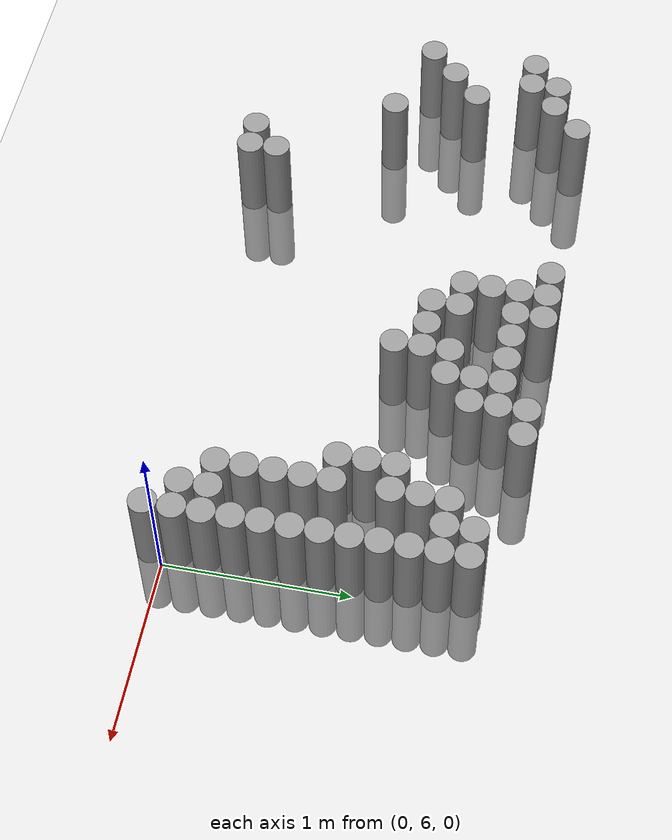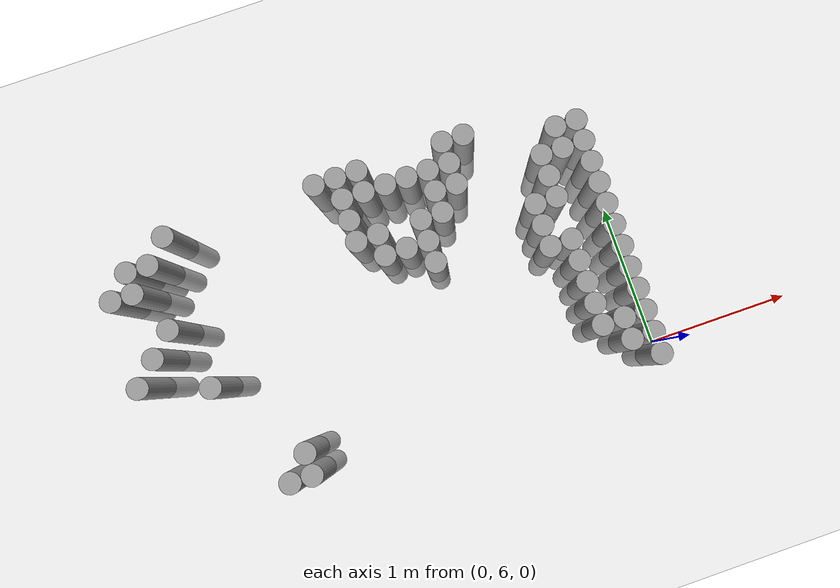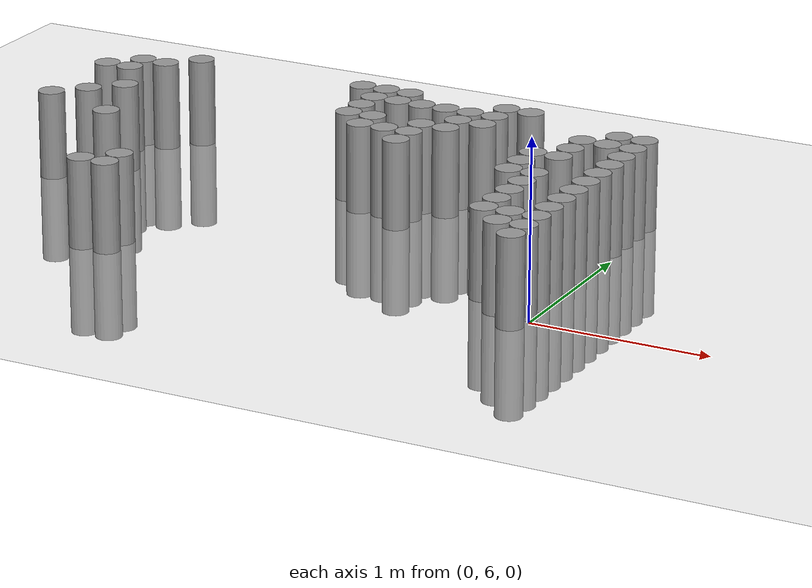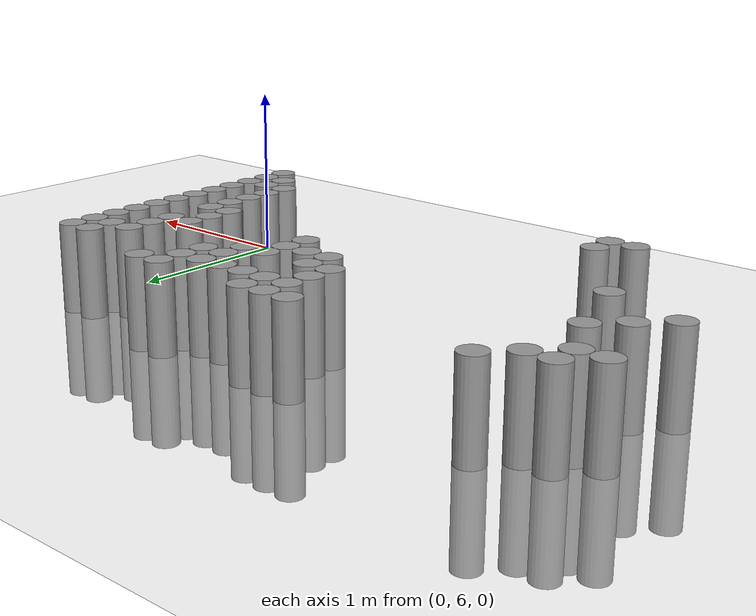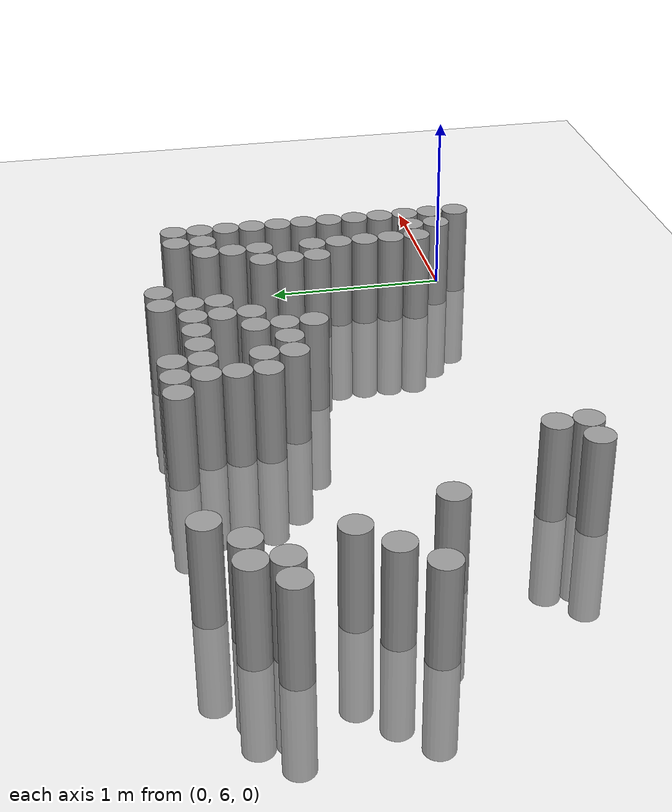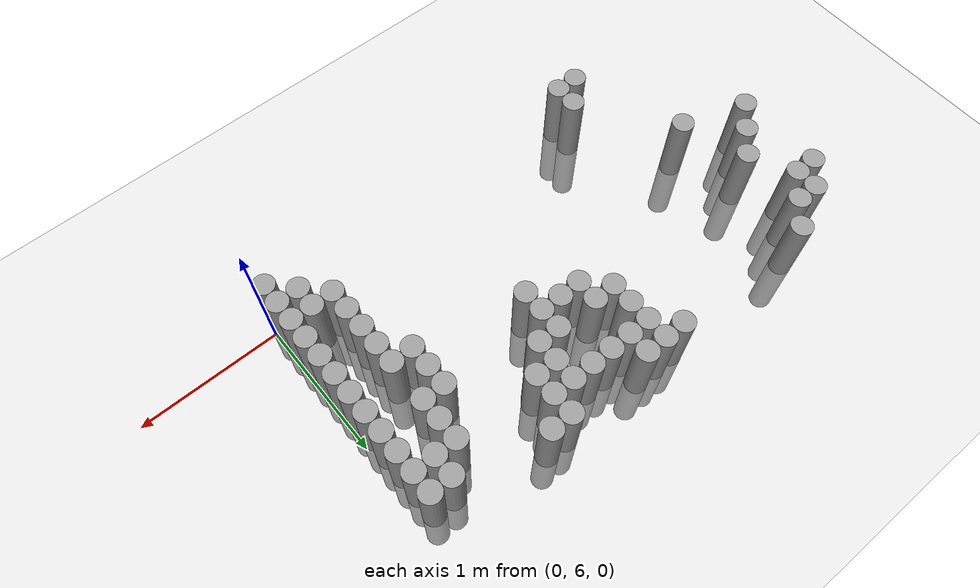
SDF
<sdf version="1.6">
 <world name="default">
  <model name="ground_plane">
   <static>1</static>
   <link name="link">
    <collision name="collision">
     <geometry><plane><normal>0 0 1</normal><size>100 100</size></plane></geometry>
     <surface><friction><ode><mu>100</mu><mu2>50</mu2></ode></friction></surface>
    </collision>
    <visual name="visual">
     <cast_shadows>0</cast_shadows>
     <geometry><plane><normal>0 0 1</normal><size>100 100</size></plane></geometry>
     <material>
      <script><uri>file://media/materials/scripts/gazebo.material</uri><name>Gazebo/Grey</name></script>
     </material>
    </visual>
   </link>
  </model>
  <model name="unit_cylinder_171">
   <pose>-3.375000 6.825000 0.000000 0.000000 0.000000 0.000000</pose>
   <link name="link">
    <inertial>
     <mass>1</mass>
     <inertia><ixx>0.145833</ixx><ixy>0</ixy><ixz>0</ixz><iyy>0.145833</iyy><iyz>0</iyz><izz>0.125</izz></inertia>
    </inertial>
    <collision name="collision">
     <geometry><cylinder><radius>0.075000</radius><length>1</length></cylinder></geometry>
    </collision>
    <visual name="visual">
     <geometry><cylinder><radius>0.075000</radius><length>1</length></cylinder></geometry>
     <material>
      <script><name>Gazebo/Grey</name><uri>file://media/materials/scripts/gazebo.material</uri></script>
     </material>
    </visual>
   </link>
  </model>
  <model name="unit_cylinder_172">
   <pose>-3.375000 7.425000 0.000000 0.000000 0.000000 0.000000</pose>
   <link name="link">
    <inertial>
     <mass>1</mass>
     <inertia><ixx>0.145833</ixx><ixy>0</ixy><ixz>0</ixz><iyy>0.145833</iyy><iyz>0</iyz><izz>0.125</izz></inertia>
    </inertial>
    <collision name="collision">
     <geometry><cylinder><radius>0.075000</radius><length>1</length></cylinder></geometry>
    </collision>
    <visual name="visual">
     <geometry><cylinder><radius>0.075000</radius><length>1</length></cylinder></geometry>
     <material>
      <script><name>Gazebo/Grey</name><uri>file://media/materials/scripts/gazebo.material</uri></script>
     </material>
    </visual>
   </link>
  </model>
  <model name="unit_cylinder_174">
   <pose>-3.225000 6.975000 0.000000 0.000000 0.000000 0.000000</pose>
   <link name="link">
    <inertial>
     <mass>1</mass>
     <inertia><ixx>0.145833</ixx><ixy>0</ixy><ixz>0</ixz><iyy>0.145833</iyy><iyz>0</iyz><izz>0.125</izz></inertia>
    </inertial>
    <collision name="collision">
     <geometry><cylinder><radius>0.075000</radius><length>1</length></cylinder></geometry>
    </collision>
    <visual name="visual">
     <geometry><cylinder><radius>0.075000</radius><length>1</length></cylinder></geometry>
     <material>
      <script><name>Gazebo/Grey</name><uri>file://media/materials/scripts/gazebo.material</uri></script>
     </material>
    </visual>
   </link>
  </model>
  <model name="unit_cylinder_175">
   <pose>-3.225000 7.425000 0.000000 0.000000 0.000000 0.000000</pose>
   <link name="link">
    <inertial>
     <mass>1</mass>
     <inertia><ixx>0.145833</ixx><ixy>0</ixy><ixz>0</ixz><iyy>0.145833</iyy><iyz>0</iyz><izz>0.125</izz></inertia>
    </inertial>
    <collision name="collision">
     <geometry><cylinder><radius>0.075000</radius><length>1</length></cylinder></geometry>
    </collision>
    <visual name="visual">
     <geometry><cylinder><radius>0.075000</radius><length>1</length></cylinder></geometry>
     <material>
      <script><name>Gazebo/Grey</name><uri>file://media/materials/scripts/gazebo.material</uri></script>
     </material>
    </visual>
   </link>
  </model>
  <model name="unit_cylinder_176">
   <pose>-3.225000 7.575000 0.000000 0.000000 0.000000 0.000000</pose>
   <link name="link">
    <inertial>
     <mass>1</mass>
     <inertia><ixx>0.145833</ixx><ixy>0</ixy><ixz>0</ixz><iyy>0.145833</iyy><iyz>0</iyz><izz>0.125</izz></inertia>
    </inertial>
    <collision name="collision">
     <geometry><cylinder><radius>0.075000</radius><length>1</length></cylinder></geometry>
    </collision>
    <visual name="visual">
     <geometry><cylinder><radius>0.075000</radius><length>1</length></cylinder></geometry>
     <material>
      <script><name>Gazebo/Grey</name><uri>file://media/materials/scripts/gazebo.material</uri></script>
     </material>
    </visual>
   </link>
  </model>
  <model name="unit_cylinder_178">
   <pose>-3.075000 7.125000 0.000000 0.000000 0.000000 0.000000</pose>
   <link name="link">
    <inertial>
     <mass>1</mass>
     <inertia><ixx>0.145833</ixx><ixy>0</ixy><ixz>0</ixz><iyy>0.145833</iyy><iyz>0</iyz><izz>0.125</izz></inertia>
    </inertial>
    <collision name="collision">
     <geometry><cylinder><radius>0.075000</radius><length>1</length></cylinder></geometry>
    </collision>
    <visual name="visual">
     <geometry><cylinder><radius>0.075000</radius><length>1</length></cylinder></geometry>
     <material>
      <script><name>Gazebo/Grey</name><uri>file://media/materials/scripts/gazebo.material</uri></script>
     </material>
    </visual>
   </link>
  </model>
  <model name="unit_cylinder_179">
   <pose>-3.075000 7.575000 0.000000 0.000000 0.000000 0.000000</pose>
   <link name="link">
    <inertial>
     <mass>1</mass>
     <inertia><ixx>0.145833</ixx><ixy>0</ixy><ixz>0</ixz><iyy>0.145833</iyy><iyz>0</iyz><izz>0.125</izz></inertia>
    </inertial>
    <collision name="collision">
     <geometry><cylinder><radius>0.075000</radius><length>1</length></cylinder></geometry>
    </collision>
    <visual name="visual">
     <geometry><cylinder><radius>0.075000</radius><length>1</length></cylinder></geometry>
     <material>
      <script><name>Gazebo/Grey</name><uri>file://media/materials/scripts/gazebo.material</uri></script>
     </material>
    </visual>
   </link>
  </model>
  <model name="unit_cylinder_182">
   <pose>-2.925000 6.675000 0.000000 0.000000 0.000000 0.000000</pose>
   <link name="link">
    <inertial>
     <mass>1</mass>
     <inertia><ixx>0.145833</ixx><ixy>0</ixy><ixz>0</ixz><iyy>0.145833</iyy><iyz>0</iyz><izz>0.125</izz></inertia>
    </inertial>
    <collision name="collision">
     <geometry><cylinder><radius>0.075000</radius><length>1</length></cylinder></geometry>
    </collision>
    <visual name="visual">
     <geometry><cylinder><radius>0.075000</radius><length>1</length></cylinder></geometry>
     <material>
      <script><name>Gazebo/Grey</name><uri>file://media/materials/scripts/gazebo.material</uri></script>
     </material>
    </visual>
   </link>
  </model>
  <model name="unit_cylinder_183">
   <pose>-2.925000 7.725000 0.000000 0.000000 0.000000 0.000000</pose>
   <link name="link">
    <inertial>
     <mass>1</mass>
     <inertia><ixx>0.145833</ixx><ixy>0</ixy><ixz>0</ixz><iyy>0.145833</iyy><iyz>0</iyz><izz>0.125</izz></inertia>
    </inertial>
    <collision name="collision">
     <geometry><cylinder><radius>0.075000</radius><length>1</length></cylinder></geometry>
    </collision>
    <visual name="visual">
     <geometry><cylinder><radius>0.075000</radius><length>1</length></cylinder></geometry>
     <material>
      <script><name>Gazebo/Grey</name><uri>file://media/materials/scripts/gazebo.material</uri></script>
     </material>
    </visual>
   </link>
  </model>
  <model name="unit_cylinder_191">
   <pose>-2.625000 5.925000 0.000000 0.000000 0.000000 0.000000</pose>
   <link name="link">
    <inertial>
     <mass>1</mass>
     <inertia><ixx>0.145833</ixx><ixy>0</ixy><ixz>0</ixz><iyy>0.145833</iyy><iyz>0</iyz><izz>0.125</izz></inertia>
    </inertial>
    <collision name="collision">
     <geometry><cylinder><radius>0.075000</radius><length>1</length></cylinder></geometry>
    </collision>
    <visual name="visual">
     <geometry><cylinder><radius>0.075000</radius><length>1</length></cylinder></geometry>
     <material>
      <script><name>Gazebo/Grey</name><uri>file://media/materials/scripts/gazebo.material</uri></script>
     </material>
    </visual>
   </link>
  </model>
  <model name="unit_cylinder_194">
   <pose>-2.475000 5.925000 0.000000 0.000000 0.000000 0.000000</pose>
   <link name="link">
    <inertial>
     <mass>1</mass>
     <inertia><ixx>0.145833</ixx><ixy>0</ixy><ixz>0</ixz><iyy>0.145833</iyy><iyz>0</iyz><izz>0.125</izz></inertia>
    </inertial>
    <collision name="collision">
     <geometry><cylinder><radius>0.075000</radius><length>1</length></cylinder></geometry>
    </collision>
    <visual name="visual">
     <geometry><cylinder><radius>0.075000</radius><length>1</length></cylinder></geometry>
     <material>
      <script><name>Gazebo/Grey</name><uri>file://media/materials/scripts/gazebo.material</uri></script>
     </material>
    </visual>
   </link>
  </model>
  <model name="unit_cylinder_195">
   <pose>-2.475000 6.075000 0.000000 0.000000 0.000000 0.000000</pose>
   <link name="link">
    <inertial>
     <mass>1</mass>
     <inertia><ixx>0.145833</ixx><ixy>0</ixy><ixz>0</ixz><iyy>0.145833</iyy><iyz>0</iyz><izz>0.125</izz></inertia>
    </inertial>
    <collision name="collision">
     <geometry><cylinder><radius>0.075000</radius><length>1</length></cylinder></geometry>
    </collision>
    <visual name="visual">
     <geometry><cylinder><radius>0.075000</radius><length>1</length></cylinder></geometry>
     <material>
      <script><name>Gazebo/Grey</name><uri>file://media/materials/scripts/gazebo.material</uri></script>
     </material>
    </visual>
   </link>
  </model>
  <model name="unit_cylinder_202">
   <pose>-1.875000 7.725000 0.000000 0.000000 0.000000 0.000000</pose>
   <link name="link">
    <inertial>
     <mass>1</mass>
     <inertia><ixx>0.145833</ixx><ixy>0</ixy><ixz>0</ixz><iyy>0.145833</iyy><iyz>0</iyz><izz>0.125</izz></inertia>
    </inertial>
    <collision name="collision">
     <geometry><cylinder><radius>0.075000</radius><length>1</length></cylinder></geometry>
    </collision>
    <visual name="visual">
     <geometry><cylinder><radius>0.075000</radius><length>1</length></cylinder></geometry>
     <material>
      <script><name>Gazebo/Grey</name><uri>file://media/materials/scripts/gazebo.material</uri></script>
     </material>
    </visual>
   </link>
  </model>
  <model name="unit_cylinder_206">
   <pose>-1.725000 7.275000 0.000000 0.000000 0.000000 0.000000</pose>
   <link name="link">
    <inertial>
     <mass>1</mass>
     <inertia><ixx>0.145833</ixx><ixy>0</ixy><ixz>0</ixz><iyy>0.145833</iyy><iyz>0</iyz><izz>0.125</izz></inertia>
    </inertial>
    <collision name="collision">
     <geometry><cylinder><radius>0.075000</radius><length>1</length></cylinder></geometry>
    </collision>
    <visual name="visual">
     <geometry><cylinder><radius>0.075000</radius><length>1</length></cylinder></geometry>
     <material>
      <script><name>Gazebo/Grey</name><uri>file://media/materials/scripts/gazebo.material</uri></script>
     </material>
    </visual>
   </link>
  </model>
  <model name="unit_cylinder_207">
   <pose>-1.725000 7.425000 0.000000 0.000000 0.000000 0.000000</pose>
   <link name="link">
    <inertial>
     <mass>1</mass>
     <inertia><ixx>0.145833</ixx><ixy>0</ixy><ixz>0</ixz><iyy>0.145833</iyy><iyz>0</iyz><izz>0.125</izz></inertia>
    </inertial>
    <collision name="collision">
     <geometry><cylinder><radius>0.075000</radius><length>1</length></cylinder></geometry>
    </collision>
    <visual name="visual">
     <geometry><cylinder><radius>0.075000</radius><length>1</length></cylinder></geometry>
     <material>
      <script><name>Gazebo/Grey</name><uri>file://media/materials/scripts/gazebo.material</uri></script>
     </material>
    </visual>
   </link>
  </model>
  <model name="unit_cylinder_208">
   <pose>-1.725000 7.575000 0.000000 0.000000 0.000000 0.000000</pose>
   <link name="link">
    <inertial>
     <mass>1</mass>
     <inertia><ixx>0.145833</ixx><ixy>0</ixy><ixz>0</ixz><iyy>0.145833</iyy><iyz>0</iyz><izz>0.125</izz></inertia>
    </inertial>
    <collision name="collision">
     <geometry><cylinder><radius>0.075000</radius><length>1</length></cylinder></geometry>
    </collision>
    <visual name="visual">
     <geometry><cylinder><radius>0.075000</radius><length>1</length></cylinder></geometry>
     <material>
      <script><name>Gazebo/Grey</name><uri>file://media/materials/scripts/gazebo.material</uri></script>
     </material>
    </visual>
   </link>
  </model>
  <model name="unit_cylinder_209">
   <pose>-1.725000 7.725000 0.000000 0.000000 0.000000 0.000000</pose>
   <link name="link">
    <inertial>
     <mass>1</mass>
     <inertia><ixx>0.145833</ixx><ixy>0</ixy><ixz>0</ixz><iyy>0.145833</iyy><iyz>0</iyz><izz>0.125</izz></inertia>
    </inertial>
    <collision name="collision">
     <geometry><cylinder><radius>0.075000</radius><length>1</length></cylinder></geometry>
    </collision>
    <visual name="visual">
     <geometry><cylinder><radius>0.075000</radius><length>1</length></cylinder></geometry>
     <material>
      <script><name>Gazebo/Grey</name><uri>file://media/materials/scripts/gazebo.material</uri></script>
     </material>
    </visual>
   </link>
  </model>
  <model name="unit_cylinder_214">
   <pose>-1.575000 7.125000 0.000000 0.000000 0.000000 0.000000</pose>
   <link name="link">
    <inertial>
     <mass>1</mass>
     <inertia><ixx>0.145833</ixx><ixy>0</ixy><ixz>0</ixz><iyy>0.145833</iyy><iyz>0</iyz><izz>0.125</izz></inertia>
    </inertial>
    <collision name="collision">
     <geometry><cylinder><radius>0.075000</radius><length>1</length></cylinder></geometry>
    </collision>
    <visual name="visual">
     <geometry><cylinder><radius>0.075000</radius><length>1</length></cylinder></geometry>
     <material>
      <script><name>Gazebo/Grey</name><uri>file://media/materials/scripts/gazebo.material</uri></script>
     </material>
    </visual>
   </link>
  </model>
  <model name="unit_cylinder_215">
   <pose>-1.575000 7.275000 0.000000 0.000000 0.000000 0.000000</pose>
   <link name="link">
    <inertial>
     <mass>1</mass>
     <inertia><ixx>0.145833</ixx><ixy>0</ixy><ixz>0</ixz><iyy>0.145833</iyy><iyz>0</iyz><izz>0.125</izz></inertia>
    </inertial>
    <collision name="collision">
     <geometry><cylinder><radius>0.075000</radius><length>1</length></cylinder></geometry>
    </collision>
    <visual name="visual">
     <geometry><cylinder><radius>0.075000</radius><length>1</length></cylinder></geometry>
     <material>
      <script><name>Gazebo/Grey</name><uri>file://media/materials/scripts/gazebo.material</uri></script>
     </material>
    </visual>
   </link>
  </model>
  <model name="unit_cylinder_216">
   <pose>-1.575000 7.575000 0.000000 0.000000 0.000000 0.000000</pose>
   <link name="link">
    <inertial>
     <mass>1</mass>
     <inertia><ixx>0.145833</ixx><ixy>0</ixy><ixz>0</ixz><iyy>0.145833</iyy><iyz>0</iyz><izz>0.125</izz></inertia>
    </inertial>
    <collision name="collision">
     <geometry><cylinder><radius>0.075000</radius><length>1</length></cylinder></geometry>
    </collision>
    <visual name="visual">
     <geometry><cylinder><radius>0.075000</radius><length>1</length></cylinder></geometry>
     <material>
      <script><name>Gazebo/Grey</name><uri>file://media/materials/scripts/gazebo.material</uri></script>
     </material>
    </visual>
   </link>
  </model>
  <model name="unit_cylinder_217">
   <pose>-1.575000 7.725000 0.000000 0.000000 0.000000 0.000000</pose>
   <link name="link">
    <inertial>
     <mass>1</mass>
     <inertia><ixx>0.145833</ixx><ixy>0</ixy><ixz>0</ixz><iyy>0.145833</iyy><iyz>0</iyz><izz>0.125</izz></inertia>
    </inertial>
    <collision name="collision">
     <geometry><cylinder><radius>0.075000</radius><length>1</length></cylinder></geometry>
    </collision>
    <visual name="visual">
     <geometry><cylinder><radius>0.075000</radius><length>1</length></cylinder></geometry>
     <material>
      <script><name>Gazebo/Grey</name><uri>file://media/materials/scripts/gazebo.material</uri></script>
     </material>
    </visual>
   </link>
  </model>
  <model name="unit_cylinder_220">
   <pose>-1.425000 7.125000 0.000000 0.000000 0.000000 0.000000</pose>
   <link name="link">
    <inertial>
     <mass>1</mass>
     <inertia><ixx>0.145833</ixx><ixy>0</ixy><ixz>0</ixz><iyy>0.145833</iyy><iyz>0</iyz><izz>0.125</izz></inertia>
    </inertial>
    <collision name="collision">
     <geometry><cylinder><radius>0.075000</radius><length>1</length></cylinder></geometry>
    </collision>
    <visual name="visual">
     <geometry><cylinder><radius>0.075000</radius><length>1</length></cylinder></geometry>
     <material>
      <script><name>Gazebo/Grey</name><uri>file://media/materials/scripts/gazebo.material</uri></script>
     </material>
    </visual>
   </link>
  </model>
  <model name="unit_cylinder_221">
   <pose>-1.425000 7.575000 0.000000 0.000000 0.000000 0.000000</pose>
   <link name="link">
    <inertial>
     <mass>1</mass>
     <inertia><ixx>0.145833</ixx><ixy>0</ixy><ixz>0</ixz><iyy>0.145833</iyy><iyz>0</iyz><izz>0.125</izz></inertia>
    </inertial>
    <collision name="collision">
     <geometry><cylinder><radius>0.075000</radius><length>1</length></cylinder></geometry>
    </collision>
    <visual name="visual">
     <geometry><cylinder><radius>0.075000</radius><length>1</length></cylinder></geometry>
     <material>
      <script><name>Gazebo/Grey</name><uri>file://media/materials/scripts/gazebo.material</uri></script>
     </material>
    </visual>
   </link>
  </model>
  <model name="unit_cylinder_224">
   <pose>-1.275000 6.975000 0.000000 0.000000 0.000000 0.000000</pose>
   <link name="link">
    <inertial>
     <mass>1</mass>
     <inertia><ixx>0.145833</ixx><ixy>0</ixy><ixz>0</ixz><iyy>0.145833</iyy><iyz>0</iyz><izz>0.125</izz></inertia>
    </inertial>
    <collision name="collision">
     <geometry><cylinder><radius>0.075000</radius><length>1</length></cylinder></geometry>
    </collision>
    <visual name="visual">
     <geometry><cylinder><radius>0.075000</radius><length>1</length></cylinder></geometry>
     <material>
      <script><name>Gazebo/Grey</name><uri>file://media/materials/scripts/gazebo.material</uri></script>
     </material>
    </visual>
   </link>
  </model>
  <model name="unit_cylinder_225">
   <pose>-1.275000 7.125000 0.000000 0.000000 0.000000 0.000000</pose>
   <link name="link">
    <inertial>
     <mass>1</mass>
     <inertia><ixx>0.145833</ixx><ixy>0</ixy><ixz>0</ixz><iyy>0.145833</iyy><iyz>0</iyz><izz>0.125</izz></inertia>
    </inertial>
    <collision name="collision">
     <geometry><cylinder><radius>0.075000</radius><length>1</length></cylinder></geometry>
    </collision>
    <visual name="visual">
     <geometry><cylinder><radius>0.075000</radius><length>1</length></cylinder></geometry>
     <material>
      <script><name>Gazebo/Grey</name><uri>file://media/materials/scripts/gazebo.material</uri></script>
     </material>
    </visual>
   </link>
  </model>
  <model name="unit_cylinder_226">
   <pose>-1.275000 7.275000 0.000000 0.000000 0.000000 0.000000</pose>
   <link name="link">
    <inertial>
     <mass>1</mass>
     <inertia><ixx>0.145833</ixx><ixy>0</ixy><ixz>0</ixz><iyy>0.145833</iyy><iyz>0</iyz><izz>0.125</izz></inertia>
    </inertial>
    <collision name="collision">
     <geometry><cylinder><radius>0.075000</radius><length>1</length></cylinder></geometry>
    </collision>
    <visual name="visual">
     <geometry><cylinder><radius>0.075000</radius><length>1</length></cylinder></geometry>
     <material>
      <script><name>Gazebo/Grey</name><uri>file://media/materials/scripts/gazebo.material</uri></script>
     </material>
    </visual>
   </link>
  </model>
  <model name="unit_cylinder_227">
   <pose>-1.275000 7.575000 0.000000 0.000000 0.000000 0.000000</pose>
   <link name="link">
    <inertial>
     <mass>1</mass>
     <inertia><ixx>0.145833</ixx><ixy>0</ixy><ixz>0</ixz><iyy>0.145833</iyy><iyz>0</iyz><izz>0.125</izz></inertia>
    </inertial>
    <collision name="collision">
     <geometry><cylinder><radius>0.075000</radius><length>1</length></cylinder></geometry>
    </collision>
    <visual name="visual">
     <geometry><cylinder><radius>0.075000</radius><length>1</length></cylinder></geometry>
     <material>
      <script><name>Gazebo/Grey</name><uri>file://media/materials/scripts/gazebo.material</uri></script>
     </material>
    </visual>
   </link>
  </model>
  <model name="unit_cylinder_231">
   <pose>-1.125000 7.275000 0.000000 0.000000 0.000000 0.000000</pose>
   <link name="link">
    <inertial>
     <mass>1</mass>
     <inertia><ixx>0.145833</ixx><ixy>0</ixy><ixz>0</ixz><iyy>0.145833</iyy><iyz>0</iyz><izz>0.125</izz></inertia>
    </inertial>
    <collision name="collision">
     <geometry><cylinder><radius>0.075000</radius><length>1</length></cylinder></geometry>
    </collision>
    <visual name="visual">
     <geometry><cylinder><radius>0.075000</radius><length>1</length></cylinder></geometry>
     <material>
      <script><name>Gazebo/Grey</name><uri>file://media/materials/scripts/gazebo.material</uri></script>
     </material>
    </visual>
   </link>
  </model>
  <model name="unit_cylinder_232">
   <pose>-1.125000 7.425000 0.000000 0.000000 0.000000 0.000000</pose>
   <link name="link">
    <inertial>
     <mass>1</mass>
     <inertia><ixx>0.145833</ixx><ixy>0</ixy><ixz>0</ixz><iyy>0.145833</iyy><iyz>0</iyz><izz>0.125</izz></inertia>
    </inertial>
    <collision name="collision">
     <geometry><cylinder><radius>0.075000</radius><length>1</length></cylinder></geometry>
    </collision>
    <visual name="visual">
     <geometry><cylinder><radius>0.075000</radius><length>1</length></cylinder></geometry>
     <material>
      <script><name>Gazebo/Grey</name><uri>file://media/materials/scripts/gazebo.material</uri></script>
     </material>
    </visual>
   </link>
  </model>
  <model name="unit_cylinder_233">
   <pose>-1.125000 7.575000 0.000000 0.000000 0.000000 0.000000</pose>
   <link name="link">
    <inertial>
     <mass>1</mass>
     <inertia><ixx>0.145833</ixx><ixy>0</ixy><ixz>0</ixz><iyy>0.145833</iyy><iyz>0</iyz><izz>0.125</izz></inertia>
    </inertial>
    <collision name="collision">
     <geometry><cylinder><radius>0.075000</radius><length>1</length></cylinder></geometry>
    </collision>
    <visual name="visual">
     <geometry><cylinder><radius>0.075000</radius><length>1</length></cylinder></geometry>
     <material>
      <script><name>Gazebo/Grey</name><uri>file://media/materials/scripts/gazebo.material</uri></script>
     </material>
    </visual>
   </link>
  </model>
  <model name="unit_cylinder_238">
   <pose>-0.975000 7.425000 0.000000 0.000000 0.000000 0.000000</pose>
   <link name="link">
    <inertial>
     <mass>1</mass>
     <inertia><ixx>0.145833</ixx><ixy>0</ixy><ixz>0</ixz><iyy>0.145833</iyy><iyz>0</iyz><izz>0.125</izz></inertia>
    </inertial>
    <collision name="collision">
     <geometry><cylinder><radius>0.075000</radius><length>1</length></cylinder></geometry>
    </collision>
    <visual name="visual">
     <geometry><cylinder><radius>0.075000</radius><length>1</length></cylinder></geometry>
     <material>
      <script><name>Gazebo/Grey</name><uri>file://media/materials/scripts/gazebo.material</uri></script>
     </material>
    </visual>
   </link>
  </model>
  <model name="unit_cylinder_239">
   <pose>-0.975000 7.575000 0.000000 0.000000 0.000000 0.000000</pose>
   <link name="link">
    <inertial>
     <mass>1</mass>
     <inertia><ixx>0.145833</ixx><ixy>0</ixy><ixz>0</ixz><iyy>0.145833</iyy><iyz>0</iyz><izz>0.125</izz></inertia>
    </inertial>
    <collision name="collision">
     <geometry><cylinder><radius>0.075000</radius><length>1</length></cylinder></geometry>
    </collision>
    <visual name="visual">
     <geometry><cylinder><radius>0.075000</radius><length>1</length></cylinder></geometry>
     <material>
      <script><name>Gazebo/Grey</name><uri>file://media/materials/scripts/gazebo.material</uri></script>
     </material>
    </visual>
   </link>
  </model>
  <model name="unit_cylinder_240">
   <pose>-0.975000 7.725000 0.000000 0.000000 0.000000 0.000000</pose>
   <link name="link">
    <inertial>
     <mass>1</mass>
     <inertia><ixx>0.145833</ixx><ixy>0</ixy><ixz>0</ixz><iyy>0.145833</iyy><iyz>0</iyz><izz>0.125</izz></inertia>
    </inertial>
    <collision name="collision">
     <geometry><cylinder><radius>0.075000</radius><length>1</length></cylinder></geometry>
    </collision>
    <visual name="visual">
     <geometry><cylinder><radius>0.075000</radius><length>1</length></cylinder></geometry>
     <material>
      <script><name>Gazebo/Grey</name><uri>file://media/materials/scripts/gazebo.material</uri></script>
     </material>
    </visual>
   </link>
  </model>
  <model name="unit_cylinder_245">
   <pose>-0.825000 7.725000 0.000000 0.000000 0.000000 0.000000</pose>
   <link name="link">
    <inertial>
     <mass>1</mass>
     <inertia><ixx>0.145833</ixx><ixy>0</ixy><ixz>0</ixz><iyy>0.145833</iyy><iyz>0</iyz><izz>0.125</izz></inertia>
    </inertial>
    <collision name="collision">
     <geometry><cylinder><radius>0.075000</radius><length>1</length></cylinder></geometry>
    </collision>
    <visual name="visual">
     <geometry><cylinder><radius>0.075000</radius><length>1</length></cylinder></geometry>
     <material>
      <script><name>Gazebo/Grey</name><uri>file://media/materials/scripts/gazebo.material</uri></script>
     </material>
    </visual>
   </link>
  </model>
  <model name="unit_cylinder_249">
   <pose>-0.525000 6.825000 0.000000 0.000000 0.000000 0.000000</pose>
   <link name="link">
    <inertial>
     <mass>1</mass>
     <inertia><ixx>0.145833</ixx><ixy>0</ixy><ixz>0</ixz><iyy>0.145833</iyy><iyz>0</iyz><izz>0.125</izz></inertia>
    </inertial>
    <collision name="collision">
     <geometry><cylinder><radius>0.075000</radius><length>1</length></cylinder></geometry>
    </collision>
    <visual name="visual">
     <geometry><cylinder><radius>0.075000</radius><length>1</length></cylinder></geometry>
     <material>
      <script><name>Gazebo/Grey</name><uri>file://media/materials/scripts/gazebo.material</uri></script>
     </material>
    </visual>
   </link>
  </model>
  <model name="unit_cylinder_250">
   <pose>-0.525000 6.975000 0.000000 0.000000 0.000000 0.000000</pose>
   <link name="link">
    <inertial>
     <mass>1</mass>
     <inertia><ixx>0.145833</ixx><ixy>0</ixy><ixz>0</ixz><iyy>0.145833</iyy><iyz>0</iyz><izz>0.125</izz></inertia>
    </inertial>
    <collision name="collision">
     <geometry><cylinder><radius>0.075000</radius><length>1</length></cylinder></geometry>
    </collision>
    <visual name="visual">
     <geometry><cylinder><radius>0.075000</radius><length>1</length></cylinder></geometry>
     <material>
      <script><name>Gazebo/Grey</name><uri>file://media/materials/scripts/gazebo.material</uri></script>
     </material>
    </visual>
   </link>
  </model>
  <model name="unit_cylinder_251">
   <pose>-0.525000 7.125000 0.000000 0.000000 0.000000 0.000000</pose>
   <link name="link">
    <inertial>
     <mass>1</mass>
     <inertia><ixx>0.145833</ixx><ixy>0</ixy><ixz>0</ixz><iyy>0.145833</iyy><iyz>0</iyz><izz>0.125</izz></inertia>
    </inertial>
    <collision name="collision">
     <geometry><cylinder><radius>0.075000</radius><length>1</length></cylinder></geometry>
    </collision>
    <visual name="visual">
     <geometry><cylinder><radius>0.075000</radius><length>1</length></cylinder></geometry>
     <material>
      <script><name>Gazebo/Grey</name><uri>file://media/materials/scripts/gazebo.material</uri></script>
     </material>
    </visual>
   </link>
  </model>
  <model name="unit_cylinder_255">
   <pose>-0.375000 6.225000 0.000000 0.000000 0.000000 0.000000</pose>
   <link name="link">
    <inertial>
     <mass>1</mass>
     <inertia><ixx>0.145833</ixx><ixy>0</ixy><ixz>0</ixz><iyy>0.145833</iyy><iyz>0</iyz><izz>0.125</izz></inertia>
    </inertial>
    <collision name="collision">
     <geometry><cylinder><radius>0.075000</radius><length>1</length></cylinder></geometry>
    </collision>
    <visual name="visual">
     <geometry><cylinder><radius>0.075000</radius><length>1</length></cylinder></geometry>
     <material>
      <script><name>Gazebo/Grey</name><uri>file://media/materials/scripts/gazebo.material</uri></script>
     </material>
    </visual>
   </link>
  </model>
  <model name="unit_cylinder_256">
   <pose>-0.375000 6.375000 0.000000 0.000000 0.000000 0.000000</pose>
   <link name="link">
    <inertial>
     <mass>1</mass>
     <inertia><ixx>0.145833</ixx><ixy>0</ixy><ixz>0</ixz><iyy>0.145833</iyy><iyz>0</iyz><izz>0.125</izz></inertia>
    </inertial>
    <collision name="collision">
     <geometry><cylinder><radius>0.075000</radius><length>1</length></cylinder></geometry>
    </collision>
    <visual name="visual">
     <geometry><cylinder><radius>0.075000</radius><length>1</length></cylinder></geometry>
     <material>
      <script><name>Gazebo/Grey</name><uri>file://media/materials/scripts/gazebo.material</uri></script>
     </material>
    </visual>
   </link>
  </model>
  <model name="unit_cylinder_257">
   <pose>-0.375000 6.525000 0.000000 0.000000 0.000000 0.000000</pose>
   <link name="link">
    <inertial>
     <mass>1</mass>
     <inertia><ixx>0.145833</ixx><ixy>0</ixy><ixz>0</ixz><iyy>0.145833</iyy><iyz>0</iyz><izz>0.125</izz></inertia>
    </inertial>
    <collision name="collision">
     <geometry><cylinder><radius>0.075000</radius><length>1</length></cylinder></geometry>
    </collision>
    <visual name="visual">
     <geometry><cylinder><radius>0.075000</radius><length>1</length></cylinder></geometry>
     <material>
      <script><name>Gazebo/Grey</name><uri>file://media/materials/scripts/gazebo.material</uri></script>
     </material>
    </visual>
   </link>
  </model>
  <model name="unit_cylinder_258">
   <pose>-0.375000 6.675000 0.000000 0.000000 0.000000 0.000000</pose>
   <link name="link">
    <inertial>
     <mass>1</mass>
     <inertia><ixx>0.145833</ixx><ixy>0</ixy><ixz>0</ixz><iyy>0.145833</iyy><iyz>0</iyz><izz>0.125</izz></inertia>
    </inertial>
    <collision name="collision">
     <geometry><cylinder><radius>0.075000</radius><length>1</length></cylinder></geometry>
    </collision>
    <visual name="visual">
     <geometry><cylinder><radius>0.075000</radius><length>1</length></cylinder></geometry>
     <material>
      <script><name>Gazebo/Grey</name><uri>file://media/materials/scripts/gazebo.material</uri></script>
     </material>
    </visual>
   </link>
  </model>
  <model name="unit_cylinder_259">
   <pose>-0.375000 6.825000 0.000000 0.000000 0.000000 0.000000</pose>
   <link name="link">
    <inertial>
     <mass>1</mass>
     <inertia><ixx>0.145833</ixx><ixy>0</ixy><ixz>0</ixz><iyy>0.145833</iyy><iyz>0</iyz><izz>0.125</izz></inertia>
    </inertial>
    <collision name="collision">
     <geometry><cylinder><radius>0.075000</radius><length>1</length></cylinder></geometry>
    </collision>
    <visual name="visual">
     <geometry><cylinder><radius>0.075000</radius><length>1</length></cylinder></geometry>
     <material>
      <script><name>Gazebo/Grey</name><uri>file://media/materials/scripts/gazebo.material</uri></script>
     </material>
    </visual>
   </link>
  </model>
  <model name="unit_cylinder_260">
   <pose>-0.375000 7.125000 0.000000 0.000000 0.000000 0.000000</pose>
   <link name="link">
    <inertial>
     <mass>1</mass>
     <inertia><ixx>0.145833</ixx><ixy>0</ixy><ixz>0</ixz><iyy>0.145833</iyy><iyz>0</iyz><izz>0.125</izz></inertia>
    </inertial>
    <collision name="collision">
     <geometry><cylinder><radius>0.075000</radius><length>1</length></cylinder></geometry>
    </collision>
    <visual name="visual">
     <geometry><cylinder><radius>0.075000</radius><length>1</length></cylinder></geometry>
     <material>
      <script><name>Gazebo/Grey</name><uri>file://media/materials/scripts/gazebo.material</uri></script>
     </material>
    </visual>
   </link>
  </model>
  <model name="unit_cylinder_261">
   <pose>-0.375000 7.275000 0.000000 0.000000 0.000000 0.000000</pose>
   <link name="link">
    <inertial>
     <mass>1</mass>
     <inertia><ixx>0.145833</ixx><ixy>0</ixy><ixz>0</ixz><iyy>0.145833</iyy><iyz>0</iyz><izz>0.125</izz></inertia>
    </inertial>
    <collision name="collision">
     <geometry><cylinder><radius>0.075000</radius><length>1</length></cylinder></geometry>
    </collision>
    <visual name="visual">
     <geometry><cylinder><radius>0.075000</radius><length>1</length></cylinder></geometry>
     <material>
      <script><name>Gazebo/Grey</name><uri>file://media/materials/scripts/gazebo.material</uri></script>
     </material>
    </visual>
   </link>
  </model>
  <model name="unit_cylinder_262">
   <pose>-0.375000 7.425000 0.000000 0.000000 0.000000 0.000000</pose>
   <link name="link">
    <inertial>
     <mass>1</mass>
     <inertia><ixx>0.145833</ixx><ixy>0</ixy><ixz>0</ixz><iyy>0.145833</iyy><iyz>0</iyz><izz>0.125</izz></inertia>
    </inertial>
    <collision name="collision">
     <geometry><cylinder><radius>0.075000</radius><length>1</length></cylinder></geometry>
    </collision>
    <visual name="visual">
     <geometry><cylinder><radius>0.075000</radius><length>1</length></cylinder></geometry>
     <material>
      <script><name>Gazebo/Grey</name><uri>file://media/materials/scripts/gazebo.material</uri></script>
     </material>
    </visual>
   </link>
  </model>
  <model name="unit_cylinder_267">
   <pose>-0.225000 6.075000 0.000000 0.000000 0.000000 0.000000</pose>
   <link name="link">
    <inertial>
     <mass>1</mass>
     <inertia><ixx>0.145833</ixx><ixy>0</ixy><ixz>0</ixz><iyy>0.145833</iyy><iyz>0</iyz><izz>0.125</izz></inertia>
    </inertial>
    <collision name="collision">
     <geometry><cylinder><radius>0.075000</radius><length>1</length></cylinder></geometry>
    </collision>
    <visual name="visual">
     <geometry><cylinder><radius>0.075000</radius><length>1</length></cylinder></geometry>
     <material>
      <script><name>Gazebo/Grey</name><uri>file://media/materials/scripts/gazebo.material</uri></script>
     </material>
    </visual>
   </link>
  </model>
  <model name="unit_cylinder_268">
   <pose>-0.225000 6.225000 0.000000 0.000000 0.000000 0.000000</pose>
   <link name="link">
    <inertial>
     <mass>1</mass>
     <inertia><ixx>0.145833</ixx><ixy>0</ixy><ixz>0</ixz><iyy>0.145833</iyy><iyz>0</iyz><izz>0.125</izz></inertia>
    </inertial>
    <collision name="collision">
     <geometry><cylinder><radius>0.075000</radius><length>1</length></cylinder></geometry>
    </collision>
    <visual name="visual">
     <geometry><cylinder><radius>0.075000</radius><length>1</length></cylinder></geometry>
     <material>
      <script><name>Gazebo/Grey</name><uri>file://media/materials/scripts/gazebo.material</uri></script>
     </material>
    </visual>
   </link>
  </model>
  <model name="unit_cylinder_269">
   <pose>-0.225000 7.425000 0.000000 0.000000 0.000000 0.000000</pose>
   <link name="link">
    <inertial>
     <mass>1</mass>
     <inertia><ixx>0.145833</ixx><ixy>0</ixy><ixz>0</ixz><iyy>0.145833</iyy><iyz>0</iyz><izz>0.125</izz></inertia>
    </inertial>
    <collision name="collision">
     <geometry><cylinder><radius>0.075000</radius><length>1</length></cylinder></geometry>
    </collision>
    <visual name="visual">
     <geometry><cylinder><radius>0.075000</radius><length>1</length></cylinder></geometry>
     <material>
      <script><name>Gazebo/Grey</name><uri>file://media/materials/scripts/gazebo.material</uri></script>
     </material>
    </visual>
   </link>
  </model>
  <model name="unit_cylinder_270">
   <pose>-0.225000 7.575000 0.000000 0.000000 0.000000 0.000000</pose>
   <link name="link">
    <inertial>
     <mass>1</mass>
     <inertia><ixx>0.145833</ixx><ixy>0</ixy><ixz>0</ixz><iyy>0.145833</iyy><iyz>0</iyz><izz>0.125</izz></inertia>
    </inertial>
    <collision name="collision">
     <geometry><cylinder><radius>0.075000</radius><length>1</length></cylinder></geometry>
    </collision>
    <visual name="visual">
     <geometry><cylinder><radius>0.075000</radius><length>1</length></cylinder></geometry>
     <material>
      <script><name>Gazebo/Grey</name><uri>file://media/materials/scripts/gazebo.material</uri></script>
     </material>
    </visual>
   </link>
  </model>
  <model name="unit_cylinder_283">
   <pose>-0.075000 5.925000 0.000000 0.000000 0.000000 0.000000</pose>
   <link name="link">
    <inertial>
     <mass>1</mass>
     <inertia><ixx>0.145833</ixx><ixy>0</ixy><ixz>0</ixz><iyy>0.145833</iyy><iyz>0</iyz><izz>0.125</izz></inertia>
    </inertial>
    <collision name="collision">
     <geometry><cylinder><radius>0.075000</radius><length>1</length></cylinder></geometry>
    </collision>
    <visual name="visual">
     <geometry><cylinder><radius>0.075000</radius><length>1</length></cylinder></geometry>
     <material>
      <script><name>Gazebo/Grey</name><uri>file://media/materials/scripts/gazebo.material</uri></script>
     </material>
    </visual>
   </link>
  </model>
  <model name="unit_cylinder_284">
   <pose>-0.075000 6.075000 0.000000 0.000000 0.000000 0.000000</pose>
   <link name="link">
    <inertial>
     <mass>1</mass>
     <inertia><ixx>0.145833</ixx><ixy>0</ixy><ixz>0</ixz><iyy>0.145833</iyy><iyz>0</iyz><izz>0.125</izz></inertia>
    </inertial>
    <collision name="collision">
     <geometry><cylinder><radius>0.075000</radius><length>1</length></cylinder></geometry>
    </collision>
    <visual name="visual">
     <geometry><cylinder><radius>0.075000</radius><length>1</length></cylinder></geometry>
     <material>
      <script><name>Gazebo/Grey</name><uri>file://media/materials/scripts/gazebo.material</uri></script>
     </material>
    </visual>
   </link>
  </model>
  <model name="unit_cylinder_285">
   <pose>-0.075000 6.225000 0.000000 0.000000 0.000000 0.000000</pose>
   <link name="link">
    <inertial>
     <mass>1</mass>
     <inertia><ixx>0.145833</ixx><ixy>0</ixy><ixz>0</ixz><iyy>0.145833</iyy><iyz>0</iyz><izz>0.125</izz></inertia>
    </inertial>
    <collision name="collision">
     <geometry><cylinder><radius>0.075000</radius><length>1</length></cylinder></geometry>
    </collision>
    <visual name="visual">
     <geometry><cylinder><radius>0.075000</radius><length>1</length></cylinder></geometry>
     <material>
      <script><name>Gazebo/Grey</name><uri>file://media/materials/scripts/gazebo.material</uri></script>
     </material>
    </visual>
   </link>
  </model>
  <model name="unit_cylinder_286">
   <pose>-0.075000 6.375000 0.000000 0.000000 0.000000 0.000000</pose>
   <link name="link">
    <inertial>
     <mass>1</mass>
     <inertia><ixx>0.145833</ixx><ixy>0</ixy><ixz>0</ixz><iyy>0.145833</iyy><iyz>0</iyz><izz>0.125</izz></inertia>
    </inertial>
    <collision name="collision">
     <geometry><cylinder><radius>0.075000</radius><length>1</length></cylinder></geometry>
    </collision>
    <visual name="visual">
     <geometry><cylinder><radius>0.075000</radius><length>1</length></cylinder></geometry>
     <material>
      <script><name>Gazebo/Grey</name><uri>file://media/materials/scripts/gazebo.material</uri></script>
     </material>
    </visual>
   </link>
  </model>
  <model name="unit_cylinder_287">
   <pose>-0.075000 6.525000 0.000000 0.000000 0.000000 0.000000</pose>
   <link name="link">
    <inertial>
     <mass>1</mass>
     <inertia><ixx>0.145833</ixx><ixy>0</ixy><ixz>0</ixz><iyy>0.145833</iyy><iyz>0</iyz><izz>0.125</izz></inertia>
    </inertial>
    <collision name="collision">
     <geometry><cylinder><radius>0.075000</radius><length>1</length></cylinder></geometry>
    </collision>
    <visual name="visual">
     <geometry><cylinder><radius>0.075000</radius><length>1</length></cylinder></geometry>
     <material>
      <script><name>Gazebo/Grey</name><uri>file://media/materials/scripts/gazebo.material</uri></script>
     </material>
    </visual>
   </link>
  </model>
  <model name="unit_cylinder_288">
   <pose>-0.075000 6.675000 0.000000 0.000000 0.000000 0.000000</pose>
   <link name="link">
    <inertial>
     <mass>1</mass>
     <inertia><ixx>0.145833</ixx><ixy>0</ixy><ixz>0</ixz><iyy>0.145833</iyy><iyz>0</iyz><izz>0.125</izz></inertia>
    </inertial>
    <collision name="collision">
     <geometry><cylinder><radius>0.075000</radius><length>1</length></cylinder></geometry>
    </collision>
    <visual name="visual">
     <geometry><cylinder><radius>0.075000</radius><length>1</length></cylinder></geometry>
     <material>
      <script><name>Gazebo/Grey</name><uri>file://media/materials/scripts/gazebo.material</uri></script>
     </material>
    </visual>
   </link>
  </model>
  <model name="unit_cylinder_289">
   <pose>-0.075000 6.825000 0.000000 0.000000 0.000000 0.000000</pose>
   <link name="link">
    <inertial>
     <mass>1</mass>
     <inertia><ixx>0.145833</ixx><ixy>0</ixy><ixz>0</ixz><iyy>0.145833</iyy><iyz>0</iyz><izz>0.125</izz></inertia>
    </inertial>
    <collision name="collision">
     <geometry><cylinder><radius>0.075000</radius><length>1</length></cylinder></geometry>
    </collision>
    <visual name="visual">
     <geometry><cylinder><radius>0.075000</radius><length>1</length></cylinder></geometry>
     <material>
      <script><name>Gazebo/Grey</name><uri>file://media/materials/scripts/gazebo.material</uri></script>
     </material>
    </visual>
   </link>
  </model>
  <model name="unit_cylinder_290">
   <pose>-0.075000 6.975000 0.000000 0.000000 0.000000 0.000000</pose>
   <link name="link">
    <inertial>
     <mass>1</mass>
     <inertia><ixx>0.145833</ixx><ixy>0</ixy><ixz>0</ixz><iyy>0.145833</iyy><iyz>0</iyz><izz>0.125</izz></inertia>
    </inertial>
    <collision name="collision">
     <geometry><cylinder><radius>0.075000</radius><length>1</length></cylinder></geometry>
    </collision>
    <visual name="visual">
     <geometry><cylinder><radius>0.075000</radius><length>1</length></cylinder></geometry>
     <material>
      <script><name>Gazebo/Grey</name><uri>file://media/materials/scripts/gazebo.material</uri></script>
     </material>
    </visual>
   </link>
  </model>
  <model name="unit_cylinder_291">
   <pose>-0.075000 7.125000 0.000000 0.000000 0.000000 0.000000</pose>
   <link name="link">
    <inertial>
     <mass>1</mass>
     <inertia><ixx>0.145833</ixx><ixy>0</ixy><ixz>0</ixz><iyy>0.145833</iyy><iyz>0</iyz><izz>0.125</izz></inertia>
    </inertial>
    <collision name="collision">
     <geometry><cylinder><radius>0.075000</radius><length>1</length></cylinder></geometry>
    </collision>
    <visual name="visual">
     <geometry><cylinder><radius>0.075000</radius><length>1</length></cylinder></geometry>
     <material>
      <script><name>Gazebo/Grey</name><uri>file://media/materials/scripts/gazebo.material</uri></script>
     </material>
    </visual>
   </link>
  </model>
  <model name="unit_cylinder_292">
   <pose>-0.075000 7.275000 0.000000 0.000000 0.000000 0.000000</pose>
   <link name="link">
    <inertial>
     <mass>1</mass>
     <inertia><ixx>0.145833</ixx><ixy>0</ixy><ixz>0</ixz><iyy>0.145833</iyy><iyz>0</iyz><izz>0.125</izz></inertia>
    </inertial>
    <collision name="collision">
     <geometry><cylinder><radius>0.075000</radius><length>1</length></cylinder></geometry>
    </collision>
    <visual name="visual">
     <geometry><cylinder><radius>0.075000</radius><length>1</length></cylinder></geometry>
     <material>
      <script><name>Gazebo/Grey</name><uri>file://media/materials/scripts/gazebo.material</uri></script>
     </material>
    </visual>
   </link>
  </model>
  <model name="unit_cylinder_293">
   <pose>-0.075000 7.425000 0.000000 0.000000 0.000000 0.000000</pose>
   <link name="link">
    <inertial>
     <mass>1</mass>
     <inertia><ixx>0.145833</ixx><ixy>0</ixy><ixz>0</ixz><iyy>0.145833</iyy><iyz>0</iyz><izz>0.125</izz></inertia>
    </inertial>
    <collision name="collision">
     <geometry><cylinder><radius>0.075000</radius><length>1</length></cylinder></geometry>
    </collision>
    <visual name="visual">
     <geometry><cylinder><radius>0.075000</radius><length>1</length></cylinder></geometry>
     <material>
      <script><name>Gazebo/Grey</name><uri>file://media/materials/scripts/gazebo.material</uri></script>
     </material>
    </visual>
   </link>
  </model>
  <model name="unit_cylinder_294">
   <pose>-0.075000 7.575000 0.000000 0.000000 0.000000 0.000000</pose>
   <link name="link">
    <inertial>
     <mass>1</mass>
     <inertia><ixx>0.145833</ixx><ixy>0</ixy><ixz>0</ixz><iyy>0.145833</iyy><iyz>0</iyz><izz>0.125</izz></inertia>
    </inertial>
    <collision name="collision">
     <geometry><cylinder><radius>0.075000</radius><length>1</length></cylinder></geometry>
    </collision>
    <visual name="visual">
     <geometry><cylinder><radius>0.075000</radius><length>1</length></cylinder></geometry>
     <material>
      <script><name>Gazebo/Grey</name><uri>file://media/materials/scripts/gazebo.material</uri></script>
     </material>
    </visual>
   </link>
  </model>
 </world>
</sdf>
